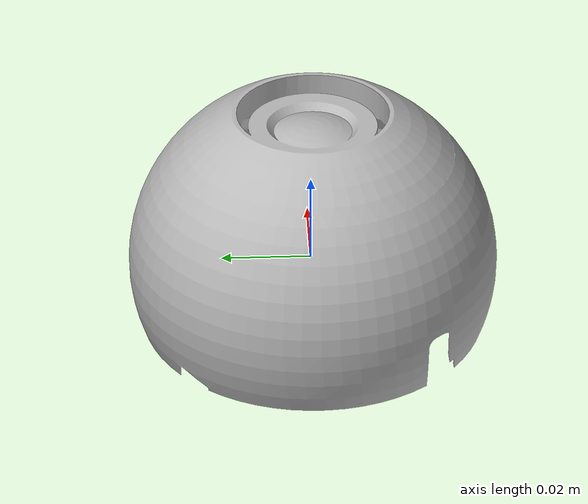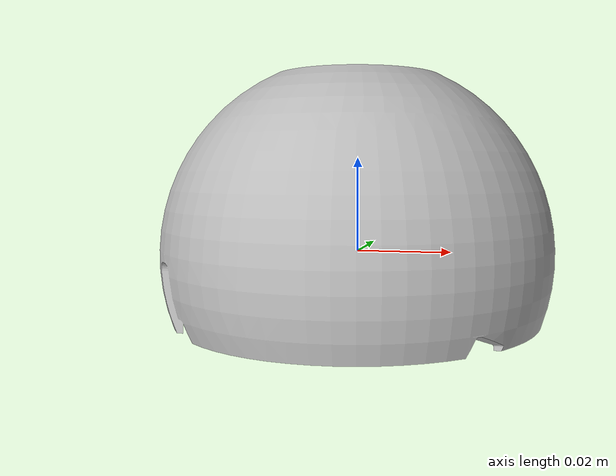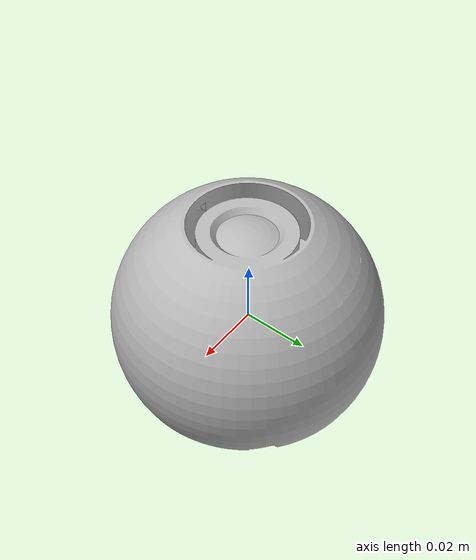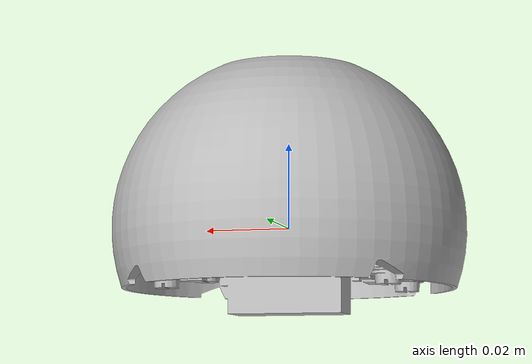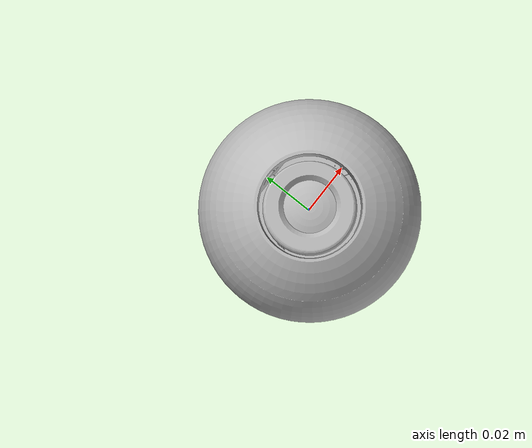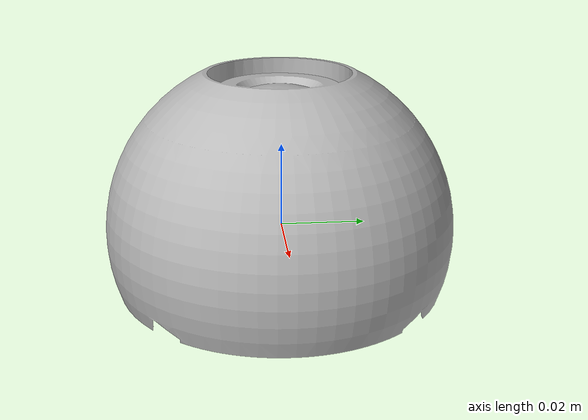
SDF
<?xml version='1.0'?>
<sdf version="1.7">
  <model name="fallback-1">
    <link name="base_link">
      <collision name="collision">
        <geometry>
            <box>
                <size>0.08 0.08 0.16</size>
            </box>
        </geometry>
      </collision>
      <visual name="visual">
        <geometry>
            <mesh>
                <uri> model://fallback-1/mesh.stl </uri>
                <scale>0.002 0.002 0.002</scale>
            </mesh>
        </geometry>
        <pose>0 0 0 0 0 0</pose>
      </visual>
    </link>
  </model>
</sdf>
